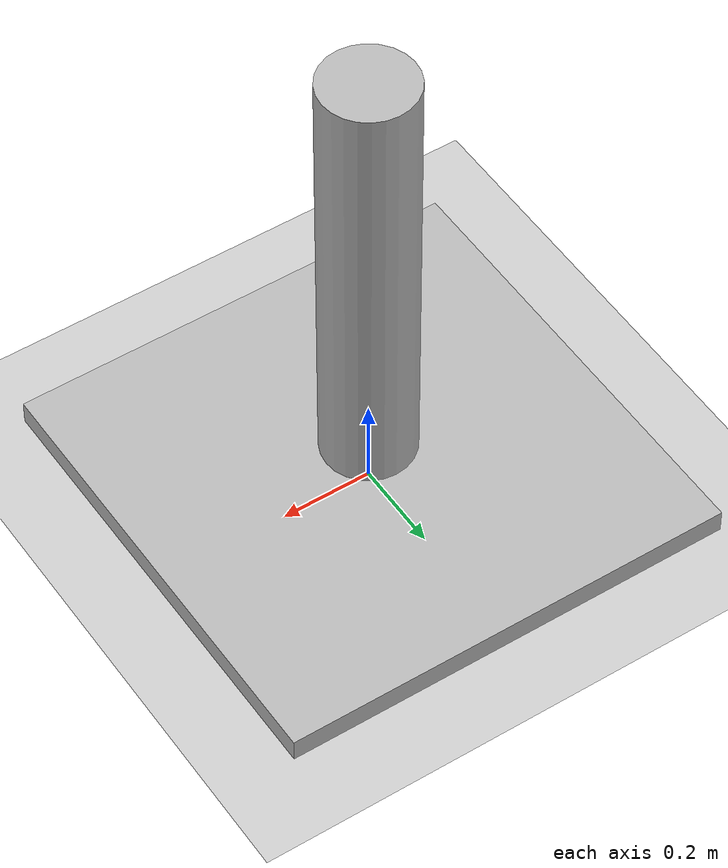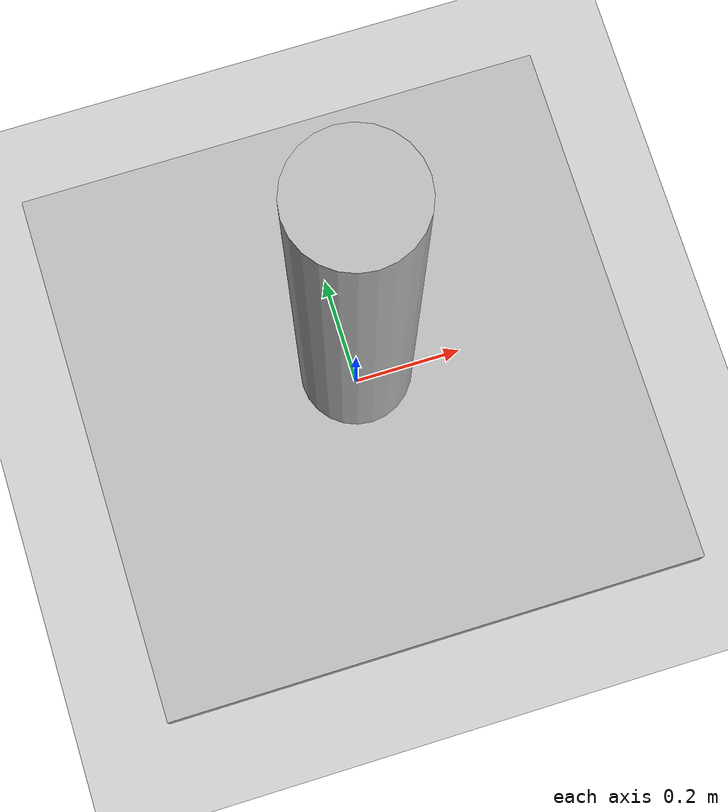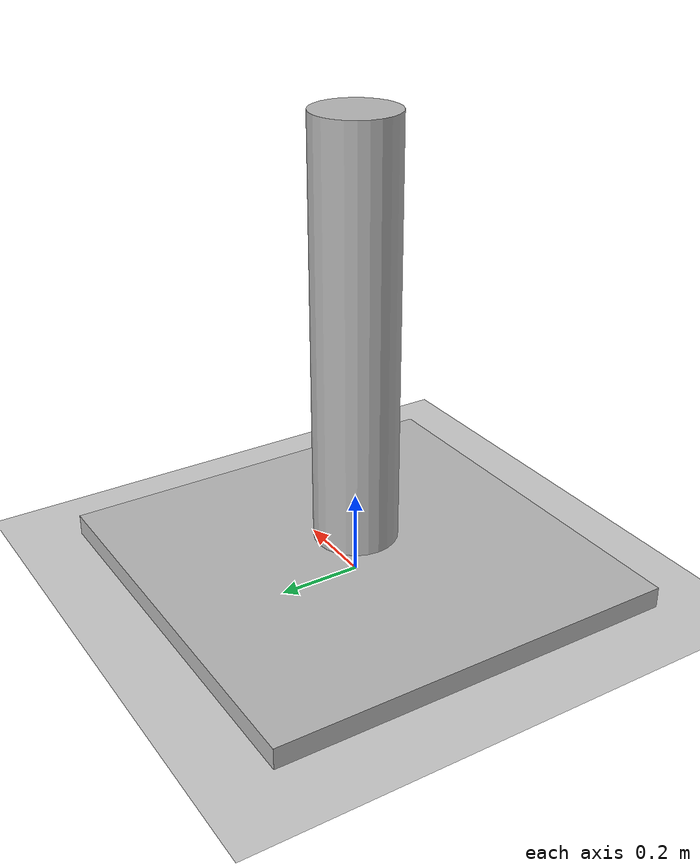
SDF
<?xml version="1.0" encoding="UTF-8" standalone="no"?>
<sdf version="1.5">
  <world name="testrobotarm_translated">
    <include>
      <uri>model://ground_plane</uri>
    </include>
    <include>
      <uri>model://sun</uri>
    </include>
    <model name="robot_arm">
      <link name="base_footprint">
        <pose>0 0 0 0 0 0</pose>
        <visual name="main_viz">
          <pose>0 0 0 0 0 0</pose>
          <geometry>
            <box>
              <size>1.0 1.0 0.1</size>
            </box>
          </geometry>
        </visual>
        <collision name="coll_main_viz">
          <pose>0 0 0 0 0 0</pose>
          <geometry>
            <box>
              <size>1.0 1.0 0.1</size>
            </box>
          </geometry>
        </collision>
        <inertial>
          <inertia>
            <ixx>8.416666666666664</ixx>
            <ixy>0.0</ixy>
            <ixz>0.0</ixz>
            <iyy>8.416666666666664</iyy>
            <iyz>0.0</iyz>
            <izz>16.666666666666664</izz>
          </inertia>
          <mass>10.0</mass>
        </inertial>
      </link>
      <link name="link_1">
        <pose>0.0 0.0 0.1 0.0 0.0 0.0</pose>
        <visual name="link_1_viz">
          <pose>0.0 0.0 0.5 0.0 0.0 0.0</pose>
          <geometry>
            <cylinder>
              <length>1.0</length>
              <radius>0.1</radius>
            </cylinder>
          </geometry>
        </visual>
        <collision name="coll_link_1_viz">
          <pose>0.0 0.0 0.5 0.0 0.0 0.0</pose>
          <geometry>
            <cylinder>
              <length>1.0</length>
              <radius>0.1</radius>
            </cylinder>
          </geometry>
        </collision>
        <inertial>
          <inertia>
            <ixx>32.78591827693044</ixx>
            <ixy>0.0</ixy>
            <ixz>0.0</ixz>
            <iyy>32.78591827693044</iyy>
            <iyz>0.0</iyz>
            <izz>1.9098593171027443</izz>
          </inertia>
          <mass>12.0</mass>
        </inertial>
      </link>
      <joint name="joint_1" type="revolute">
        <parent>base_footprint</parent>
        <child>link_1</child>
        <axis>
          <limit>
            <lower>-0.57</lower>
            <upper>0.57</upper>
            <velocity>0.1</velocity>
            <effort>100.0</effort>
          </limit>
          <xyz>1.0 0.0 0.0</xyz>
        </axis>
        <pose>0.0 0.0 1.0 0.0 0.0 0.0</pose>
      </joint>
      <pose>0 0 0 0 0 0</pose>
      <static>false</static>
    </model>
  </world>
</sdf>
